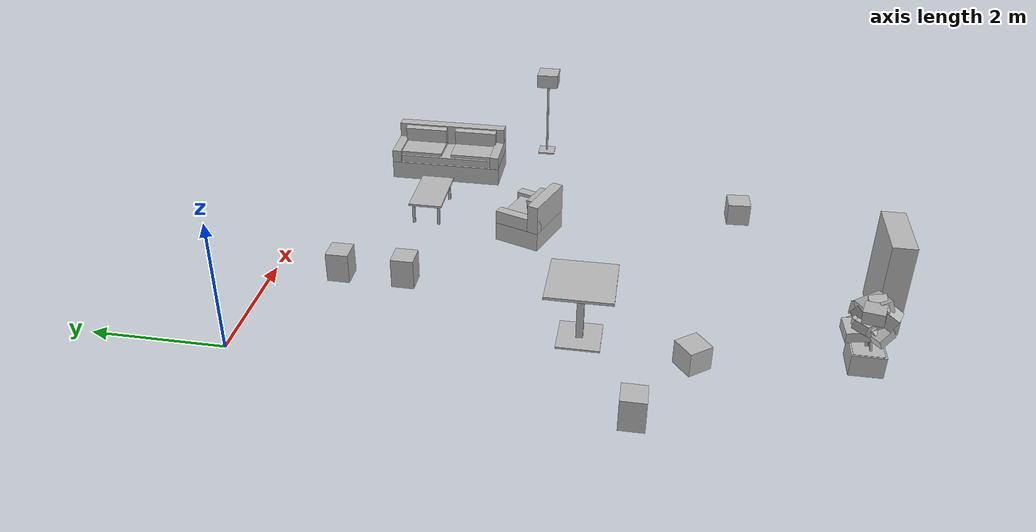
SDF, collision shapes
<sdf version="1.10">
 <model name="office_scene">
  <static>true</static>
  <link name="collab_table">
   <pose>2.60000 -4.70000 0.00000 0.00000 0.00000 0.00000</pose>
   <visual name="collab_table_visual">
    <geometry><mesh><uri>model://office_scene/meshes/collab_table.glb</uri></mesh></geometry>
   </visual>
   <collision name="collab_table_c0">
    <pose>-0.60379 -0.08456 -0.23333 0.00000 -0.00000 0.00000</pose>
    <geometry><box><size>0.1100 0.1100 1.0000</size></box></geometry>
   </collision>
   <collision name="collab_table_c1">
    <pose>-0.60379 -0.08456 -0.72833 0.00000 -0.00000 0.00000</pose>
    <geometry><box><size>0.6800 0.6800 0.0300</size></box></geometry>
   </collision>
   <collision name="collab_table_c2">
    <pose>-0.60379 -0.08456 0.28667 0.00000 -0.00000 0.00000</pose>
    <geometry><box><size>1.0400 1.0400 0.0450</size></box></geometry>
   </collision>
  </link>
  <link name="cone_orange">
   <pose>3.60000 -0.60000 0.26000 0.00000 0.00000 0.00000</pose>
   <visual name="cone_orange_visual">
    <geometry><mesh><uri>model://office_scene/meshes/cone_orange.glb</uri></mesh></geometry>
   </visual>
   <collision name="cone_orange_c0">
    <pose>-0.60379 -0.08456 -0.72333 0.00000 -0.00000 0.00000</pose>
    <geometry><box><size>0.3800 0.3800 0.5200</size></box></geometry>
   </collision>
  </link>
  <link name="cone_red">
   <pose>3.60000 -1.70000 0.26000 0.00000 0.00000 0.00000</pose>
   <visual name="cone_red_visual">
    <geometry><mesh><uri>model://office_scene/meshes/cone_red.glb</uri></mesh></geometry>
   </visual>
   <collision name="cone_red_c0">
    <pose>-0.60379 -0.08456 -0.72333 0.00000 -0.00000 0.00000</pose>
    <geometry><box><size>0.3800 0.3800 0.5200</size></box></geometry>
   </collision>
  </link>
  <link name="cone_white">
   <pose>0.80000 -5.60000 0.26000 0.00000 0.00000 0.00000</pose>
   <visual name="cone_white_visual">
    <geometry><mesh><uri>model://office_scene/meshes/cone_white.glb</uri></mesh></geometry>
   </visual>
   <collision name="cone_white_c0">
    <pose>-0.60379 -0.08456 -0.72333 0.00000 -0.00000 0.00000</pose>
    <geometry><box><size>0.3800 0.3800 0.5200</size></box></geometry>
   </collision>
  </link>
  <link name="cube_blue_glossy">
   <pose>6.60000 -7.20000 0.20000 0.00000 0.00000 0.00000</pose>
   <visual name="cube_blue_glossy_visual">
    <geometry><mesh><uri>model://office_scene/meshes/cube_blue_glossy.glb</uri></mesh></geometry>
   </visual>
   <collision name="cube_blue_glossy_c0">
    <pose>-0.60379 -0.08456 -0.74333 0.00000 -0.00000 0.05937</pose>
    <geometry><box><size>0.4000 0.4000 0.4000</size></box></geometry>
   </collision>
  </link>
  <link name="cube_red">
   <pose>2.20000 -6.40000 0.20000 0.00000 0.00000 0.00000</pose>
   <visual name="cube_red_visual">
    <geometry><mesh><uri>model://office_scene/meshes/cube_red.glb</uri></mesh></geometry>
   </visual>
   <collision name="cube_red_c0">
    <pose>-0.60379 -0.08456 -0.74333 0.00000 -0.00000 0.65907</pose>
    <geometry><box><size>0.4000 0.4000 0.4000</size></box></geometry>
   </collision>
  </link>
  <link name="floor_lamp">
   <pose>8.80000 -3.40000 0.00000 0.00000 0.00000 0.00000</pose>
   <visual name="floor_lamp_visual">
    <geometry><mesh><uri>model://office_scene/meshes/floor_lamp.glb</uri></mesh></geometry>
   </visual>
   <collision name="floor_lamp_c0">
    <pose>-0.60379 -0.08456 -0.72833 0.00000 -0.00000 0.00000</pose>
    <geometry><box><size>0.3200 0.3200 0.0300</size></box></geometry>
   </collision>
   <collision name="floor_lamp_c1">
    <pose>-0.60379 -0.08456 0.87667 -3.14159 -0.00000 0.00000</pose>
    <geometry><box><size>0.4000 0.4000 0.2600</size></box></geometry>
   </collision>
   <collision name="floor_lamp_c2">
    <pose>-0.60379 -0.08456 0.04667 0.00000 -0.00000 0.00000</pose>
    <geometry><box><size>0.0360 0.0360 1.5500</size></box></geometry>
   </collision>
  </link>
  <link name="lounge_armchair_0">
   <pose>5.50000 -3.50000 0.00000 0.00000 0.00000 0.00000</pose>
   <visual name="lounge_armchair_0_visual">
    <geometry><mesh><uri>model://office_scene/meshes/lounge_armchair_0.glb</uri></mesh></geometry>
   </visual>
   <collision name="lounge_armchair_0_c0">
    <pose>-0.23731 -0.21795 -0.28333 0.00000 -0.00000 2.79253</pose>
    <geometry><box><size>0.1700 0.8200 0.2400</size></box></geometry>
   </collision>
   <collision name="lounge_armchair_0_c1">
    <pose>-0.97027 0.04882 -0.28333 0.00000 -0.00000 2.79253</pose>
    <geometry><box><size>0.1700 0.8200 0.2400</size></box></geometry>
   </collision>
   <collision name="lounge_armchair_0_c2">
    <pose>-0.70982 -0.37587 -0.14333 0.00000 -0.00000 2.79253</pose>
    <geometry><box><size>0.9500 0.2000 0.5200</size></box></geometry>
   </collision>
   <collision name="lounge_armchair_0_c3">
    <pose>-0.60379 -0.08456 -0.57333 0.00000 -0.00000 2.79253</pose>
    <geometry><box><size>0.9500 0.8200 0.3400</size></box></geometry>
   </collision>
   <collision name="lounge_armchair_0_c4">
    <pose>-0.66193 -0.24431 -0.12333 0.10472 -0.00000 2.79253</pose>
    <geometry><box><size>0.5300 0.1400 0.4200</size></box></geometry>
   </collision>
   <collision name="lounge_armchair_0_c5">
    <pose>-0.59011 -0.04698 -0.33333 0.00000 -0.00000 2.79253</pose>
    <geometry><box><size>0.6500 0.6600 0.1400</size></box></geometry>
   </collision>
   <collision name="lounge_armchair_0_c6">
    <pose>-0.58327 -0.02818 -0.25333 0.00000 -0.00000 2.79253</pose>
    <geometry><box><size>0.5500 0.5200 0.1000</size></box></geometry>
   </collision>
  </link>
  <link name="lounge_coffee_table">
   <pose>6.00000 -1.60000 0.00000 0.00000 0.00000 0.00000</pose>
   <visual name="lounge_coffee_table_visual">
    <geometry><mesh><uri>model://office_scene/meshes/lounge_coffee_table.glb</uri></mesh></geometry>
   </visual>
   <collision name="lounge_coffee_table_c0">
    <pose>-1.07379 -0.31456 -0.55333 0.00000 -0.00000 0.00000</pose>
    <geometry><box><size>0.0450 0.0450 0.3800</size></box></geometry>
   </collision>
   <collision name="lounge_coffee_table_c1">
    <pose>-1.07379 0.14544 -0.55333 0.00000 -0.00000 0.00000</pose>
    <geometry><box><size>0.0450 0.0450 0.3800</size></box></geometry>
   </collision>
   <collision name="lounge_coffee_table_c2">
    <pose>-0.13379 -0.31456 -0.55333 0.00000 -0.00000 0.00000</pose>
    <geometry><box><size>0.0450 0.0450 0.3800</size></box></geometry>
   </collision>
   <collision name="lounge_coffee_table_c3">
    <pose>-0.13379 0.14544 -0.55333 0.00000 -0.00000 0.00000</pose>
    <geometry><box><size>0.0450 0.0450 0.3800</size></box></geometry>
   </collision>
   <collision name="lounge_coffee_table_c4">
    <pose>-0.60379 -0.08456 -0.34333 0.00000 -0.00000 0.00000</pose>
    <geometry><box><size>1.1000 0.6000 0.0400</size></box></geometry>
   </collision>
  </link>
  <link name="lounge_sofa">
   <pose>7.60000 -1.60000 0.00000 0.00000 0.00000 0.00000</pose>
   <visual name="lounge_sofa_visual">
    <geometry><mesh><uri>model://office_scene/meshes/lounge_sofa.glb</uri></mesh></geometry>
   </visual>
   <collision name="lounge_sofa_c0">
    <pose>-0.60379 0.88044 -0.28333 0.00000 -0.00000 -1.57080</pose>
    <geometry><box><size>0.1700 0.8800 0.2400</size></box></geometry>
   </collision>
   <collision name="lounge_sofa_c1">
    <pose>-0.60379 -1.04956 -0.28333 0.00000 -0.00000 -1.57080</pose>
    <geometry><box><size>0.1700 0.8800 0.2400</size></box></geometry>
   </collision>
   <collision name="lounge_sofa_c2">
    <pose>-0.26379 -0.08456 -0.14333 0.00000 -0.00000 -1.57080</pose>
    <geometry><box><size>2.1000 0.2000 0.5200</size></box></geometry>
   </collision>
   <collision name="lounge_sofa_c3">
    <pose>-0.60379 -0.08456 -0.57333 0.00000 -0.00000 -1.57080</pose>
    <geometry><box><size>2.1000 0.8800 0.3400</size></box></geometry>
   </collision>
   <collision name="lounge_sofa_c4">
    <pose>-0.40379 0.41044 -0.12333 0.10472 -0.00000 -1.57080</pose>
    <geometry><box><size>0.8100 0.1400 0.4200</size></box></geometry>
   </collision>
   <collision name="lounge_sofa_c5">
    <pose>-0.40379 -0.57956 -0.12333 0.10472 -0.00000 -1.57080</pose>
    <geometry><box><size>0.8100 0.1400 0.4200</size></box></geometry>
   </collision>
   <collision name="lounge_sofa_c6">
    <pose>-0.64379 -0.08456 -0.33333 0.00000 -0.00000 -1.57080</pose>
    <geometry><box><size>1.8000 0.7200 0.1400</size></box></geometry>
   </collision>
   <collision name="lounge_sofa_c7">
    <pose>-0.66379 0.42044 -0.25333 0.00000 -0.00000 -1.57080</pose>
    <geometry><box><size>0.8300 0.5800 0.1000</size></box></geometry>
   </collision>
   <collision name="lounge_sofa_c8">
    <pose>-0.66379 -0.58956 -0.25333 0.00000 -0.00000 -1.57080</pose>
    <geometry><box><size>0.8300 0.5800 0.1000</size></box></geometry>
   </collision>
  </link>
  <link name="reception_plant">
   <pose>2.60000 -8.90000 0.00000 0.00000 0.00000 0.00000</pose>
   <visual name="reception_plant_visual">
    <geometry><mesh><uri>model://office_scene/meshes/reception_plant.glb</uri></mesh></geometry>
   </visual>
   <collision name="reception_plant_c0">
    <pose>-0.66297 0.00853 0.14743 -0.43124 -0.40640 2.13705</pose>
    <geometry><box><size>0.3796 0.3252 0.1951</size></box></geometry>
   </collision>
   <collision name="reception_plant_c1">
    <pose>-0.63123 0.13328 -0.07920 -0.19039 0.07795 1.69608</pose>
    <geometry><box><size>0.3672 0.3146 0.1887</size></box></geometry>
   </collision>
   <collision name="reception_plant_c2">
    <pose>-0.72312 0.00906 0.09691 0.48467 -0.05937 2.47633</pose>
    <geometry><box><size>0.2652 0.2272 0.1363</size></box></geometry>
   </collision>
   <collision name="reception_plant_c3">
    <pose>-0.45793 0.03599 -0.05958 0.03662 0.44895 0.69070</pose>
    <geometry><box><size>0.3362 0.2880 0.1728</size></box></geometry>
   </collision>
   <collision name="reception_plant_c4">
    <pose>-0.62052 -0.09908 -0.00415 0.13441 0.45547 -2.42696</pose>
    <geometry><box><size>0.3002 0.2572 0.1543</size></box></geometry>
   </collision>
   <collision name="reception_plant_c5">
    <pose>-0.72335 -0.17408 -0.05276 0.47782 -0.01960 -2.49895</pose>
    <geometry><box><size>0.3213 0.2753 0.1652</size></box></geometry>
   </collision>
   <collision name="reception_plant_c6">
    <pose>-0.62099 -0.04255 0.28025 -0.02138 0.19206 1.95943</pose>
    <geometry><box><size>0.3689 0.3161 0.1896</size></box></geometry>
   </collision>
   <collision name="reception_plant_c7">
    <pose>-0.66809 -0.09119 0.38649 0.19007 0.41415 -3.03896</pose>
    <geometry><box><size>0.2975 0.2548 0.1529</size></box></geometry>
   </collision>
   <collision name="reception_plant_c8">
    <pose>-0.59899 -0.17834 0.22421 0.34545 0.01840 -1.51963</pose>
    <geometry><box><size>0.2464 0.2111 0.1266</size></box></geometry>
   </collision>
   <collision name="reception_plant_c9">
    <pose>-0.50985 -0.14563 0.00364 0.00270 0.13644 -0.57643</pose>
    <geometry><box><size>0.3314 0.2839 0.1704</size></box></geometry>
   </collision>
   <collision name="reception_plant_c10">
    <pose>-0.66257 -0.21204 0.26290 -0.15299 0.44065 -2.00285</pose>
    <geometry><box><size>0.3966 0.3398 0.2039</size></box></geometry>
   </collision>
   <collision name="reception_plant_c11">
    <pose>-0.72218 0.06715 0.14586 -0.21257 0.23836 2.23345</pose>
    <geometry><box><size>0.2704 0.2316 0.1390</size></box></geometry>
   </collision>
   <collision name="reception_plant_c12">
    <pose>-0.83517 0.08826 0.14734 -0.09836 -0.22216 2.50006</pose>
    <geometry><box><size>0.2606 0.2233 0.1340</size></box></geometry>
   </collision>
   <collision name="reception_plant_c13">
    <pose>-0.51534 0.01824 0.17554 0.48647 0.18272 0.86033</pose>
    <geometry><box><size>0.3625 0.3106 0.1863</size></box></geometry>
   </collision>
   <collision name="reception_plant_c14">
    <pose>-0.65691 -0.03495 -0.06976 0.15852 -0.48794 2.39038</pose>
    <geometry><box><size>0.2577 0.2208 0.1325</size></box></geometry>
   </collision>
   <collision name="reception_plant_c15">
    <pose>-0.57577 -0.13471 0.03469 0.03459 0.10981 -1.06127</pose>
    <geometry><box><size>0.2567 0.2199 0.1319</size></box></geometry>
   </collision>
   <collision name="reception_plant_c16">
    <pose>-0.62031 -0.04865 0.33776 0.15497 0.23978 2.00190</pose>
    <geometry><box><size>0.4085 0.3500 0.2100</size></box></geometry>
   </collision>
   <collision name="reception_plant_c17">
    <pose>-0.86803 -0.01075 0.38641 0.05927 -0.10193 2.86918</pose>
    <geometry><box><size>0.3576 0.3064 0.1838</size></box></geometry>
   </collision>
   <collision name="reception_plant_c18">
    <pose>-0.60379 -0.08456 -0.56483 0.00000 -0.00000 0.00000</pose>
    <geometry><box><size>0.5040 0.5040 0.3570</size></box></geometry>
   </collision>
   <collision name="reception_plant_c19">
    <pose>-0.60379 -0.08456 -0.39133 0.00000 -0.00000 0.00000</pose>
    <geometry><box><size>0.4515 0.4515 0.0200</size></box></geometry>
   </collision>
   <collision name="reception_plant_c20">
    <pose>-0.55140 -0.08113 -0.15533 -0.15365 0.00430 0.06538</pose>
    <geometry><box><size>0.0336 0.0336 0.5775</size></box></geometry>
   </collision>
   <collision name="reception_plant_c21">
    <pose>-0.59331 -0.03312 -0.15533 -0.05686 0.15598 1.36977</pose>
    <geometry><box><size>0.0336 0.0336 0.5775</size></box></geometry>
   </collision>
   <collision name="reception_plant_c22">
    <pose>-0.65623 -0.08210 -0.15533 0.16633 -0.15206 3.09461</pose>
    <geometry><box><size>0.0336 0.0336 0.5775</size></box></geometry>
   </collision>
   <collision name="reception_plant_c23">
    <pose>-0.60196 -0.13703 -0.15533 0.10407 0.11461 -1.53595</pose>
    <geometry><box><size>0.0336 0.0336 0.5775</size></box></geometry>
   </collision>
  </link>
  <link name="wooden_display_shelves_01_b">
   <pose>4.00000 -9.35000 0.00000 0.00000 0.00000 0.00000</pose>
   <visual name="wooden_display_shelves_01_b_visual">
    <geometry><mesh><uri>model://office_scene/meshes/wooden_display_shelves_01_b.glb</uri></mesh></geometry>
   </visual>
   <collision name="wooden_display_shelves_01_b_c0">
    <pose>-0.60379 -0.08456 0.03520 0.00000 -0.00000 -0.00000</pose>
    <geometry><box><size>1.0778 0.3715 1.5562</size></box></geometry>
   </collision>
  </link>
 </model>
</sdf>
